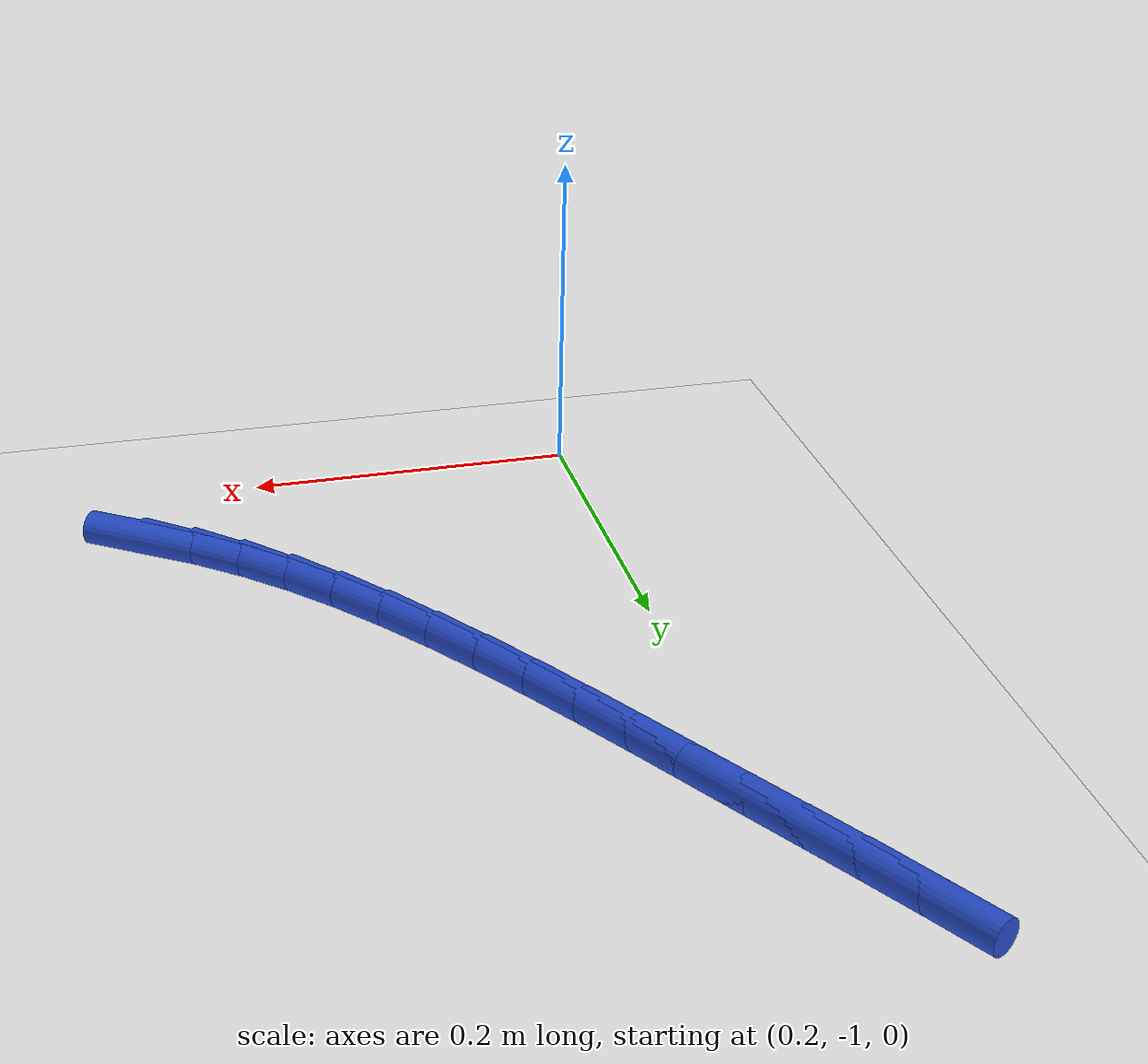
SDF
<sdf version="1.6">
 <world name="default">
  <model name="ground_plane">
   <static>1</static>
   <link name="link">
    <collision name="collision">
     <geometry><plane><normal>0 0 1</normal><size>100 100</size></plane></geometry>
     <surface><friction><ode><mu>100</mu><mu2>50</mu2></ode></friction></surface>
    </collision>
    <visual name="visual">
     <cast_shadows>0</cast_shadows>
     <geometry><plane><normal>0 0 1</normal><size>100 100</size></plane></geometry>
     <material>
      <script><uri>file://media/materials/scripts/gazebo.material</uri><name>Gazebo/WhiteGlow</name></script>
     </material>
    </visual>
   </link>
  </model>
  <model name="line">
   <link name="link_159">
    <pose>0.4726788309453588 -0.9310086370220814 0.01 0 1.57 -0.5890532412970005</pose>
    <collision name="collision">
     <geometry><cylinder><radius>0.01</radius><length>0.08</length></cylinder></geometry>
    </collision>
    <visual name="visual">
     <material>
      <script><name>Gazebo/Blue</name><uri>file://media/materials/scripts/gazebo.material</uri></script>
     </material>
     <geometry><cylinder><radius>0.01</radius><length>0.08</length></cylinder></geometry>
    </visual>
   </link>
   <link name="link_160">
    <pose>0.44523773166597164 -0.9126728973521935 0.01 0 1.57 -0.6717771150096773</pose>
    <collision name="collision">
     <geometry><cylinder><radius>0.01</radius><length>0.08</length></cylinder></geometry>
    </collision>
    <visual name="visual">
     <material>
      <script><name>Gazebo/Blue</name><uri>file://media/materials/scripts/gazebo.material</uri></script>
     </material>
     <geometry><cylinder><radius>0.01</radius><length>0.08</length></cylinder></geometry>
    </visual>
   </link>
   <link name="link_161">
    <pose>0.4191711997258245 -0.8919460734467256 0.01 0 1.57 -0.7445251690086511</pose>
    <collision name="collision">
     <geometry><cylinder><radius>0.01</radius><length>0.08</length></cylinder></geometry>
    </collision>
    <visual name="visual">
     <material>
      <script><name>Gazebo/Blue</name><uri>file://media/materials/scripts/gazebo.material</uri></script>
     </material>
     <geometry><cylinder><radius>0.01</radius><length>0.08</length></cylinder></geometry>
    </visual>
   </link>
   <link name="link_162">
    <pose>0.39436111746874386 -0.8690855186205174 0.01 0 1.57 -0.8073985625443121</pose>
    <collision name="collision">
     <geometry><cylinder><radius>0.01</radius><length>0.08</length></cylinder></geometry>
    </collision>
    <visual name="visual">
     <material>
      <script><name>Gazebo/Blue</name><uri>file://media/materials/scripts/gazebo.material</uri></script>
     </material>
     <geometry><cylinder><radius>0.01</radius><length>0.08</length></cylinder></geometry>
    </visual>
   </link>
   <link name="link_163">
    <pose>0.37068936723855633 -0.8443485861884088 0.01 0 1.57 -0.8608435589808247</pose>
    <collision name="collision">
     <geometry><cylinder><radius>0.01</radius><length>0.08</length></cylinder></geometry>
    </collision>
    <visual name="visual">
     <material>
      <script><name>Gazebo/Blue</name><uri>file://media/materials/scripts/gazebo.material</uri></script>
     </material>
     <geometry><cylinder><radius>0.01</radius><length>0.08</length></cylinder></geometry>
    </visual>
   </link>
   <link name="link_164">
    <pose>0.3480378313790888 -0.8179926294652399 0.01 0 1.57 -0.9054675526997554</pose>
    <collision name="collision">
     <geometry><cylinder><radius>0.01</radius><length>0.08</length></cylinder></geometry>
    </collision>
    <visual name="visual">
     <material>
      <script><name>Gazebo/Blue</name><uri>file://media/materials/scripts/gazebo.material</uri></script>
     </material>
     <geometry><cylinder><radius>0.01</radius><length>0.08</length></cylinder></geometry>
    </visual>
   </link>
   <link name="link_165">
    <pose>0.32628839223416745 -0.7902750017658503 0.01 0 1.57 -0.9419082473283327</pose>
    <collision name="collision">
     <geometry><cylinder><radius>0.01</radius><length>0.08</length></cylinder></geometry>
    </collision>
    <visual name="visual">
     <material>
      <script><name>Gazebo/Blue</name><uri>file://media/materials/scripts/gazebo.material</uri></script>
     </material>
     <geometry><cylinder><radius>0.01</radius><length>0.08</length></cylinder></geometry>
    </visual>
   </link>
   <link name="link_166">
    <pose>0.30532293214761946 -0.7614530564050804 0.01 0 1.57 -0.9707502834939887</pose>
    <collision name="collision">
     <geometry><cylinder><radius>0.01</radius><length>0.08</length></cylinder></geometry>
    </collision>
    <visual name="visual">
     <material>
      <script><name>Gazebo/Blue</name><uri>file://media/materials/scripts/gazebo.material</uri></script>
     </material>
     <geometry><cylinder><radius>0.01</radius><length>0.08</length></cylinder></geometry>
    </visual>
   </link>
   <link name="link_167">
    <pose>0.28502333346327074 -0.7317841466977691 0.01 0 1.57 -0.9924762861028162</pose>
    <collision name="collision">
     <geometry><cylinder><radius>0.01</radius><length>0.08</length></cylinder></geometry>
    </collision>
    <visual name="visual">
     <material>
      <script><name>Gazebo/Blue</name><uri>file://media/materials/scripts/gazebo.material</uri></script>
     </material>
     <geometry><cylinder><radius>0.01</radius><length>0.08</length></cylinder></geometry>
    </visual>
   </link>
   <link name="link_168">
    <pose>0.26527147852494815 -0.7015256259587567 0.01 0 1.57 -1.0074394712874608</pose>
    <collision name="collision">
     <geometry><cylinder><radius>0.01</radius><length>0.08</length></cylinder></geometry>
    </collision>
    <visual name="visual">
     <material>
      <script><name>Gazebo/Blue</name><uri>file://media/materials/scripts/gazebo.material</uri></script>
     </material>
     <geometry><cylinder><radius>0.01</radius><length>0.08</length></cylinder></geometry>
    </visual>
   </link>
   <link name="link_169">
    <pose>0.24594924967647847 -0.6709348475028831 0.01 0 1.57 -1.0158477807800665</pose>
    <collision name="collision">
     <geometry><cylinder><radius>0.01</radius><length>0.08</length></cylinder></geometry>
    </collision>
    <visual name="visual">
     <material>
      <script><name>Gazebo/Blue</name><uri>file://media/materials/scripts/gazebo.material</uri></script>
     </material>
     <geometry><cylinder><radius>0.01</radius><length>0.08</length></cylinder></geometry>
    </visual>
   </link>
   <link name="link_170">
    <pose>0.2269385292616881 -0.6402691646449881 0.01 0 1.57 -1.017758447614133</pose>
    <collision name="collision">
     <geometry><cylinder><radius>0.01</radius><length>0.08</length></cylinder></geometry>
    </collision>
    <visual name="visual">
     <material>
      <script><name>Gazebo/Blue</name><uri>file://media/materials/scripts/gazebo.material</uri></script>
     </material>
     <geometry><cylinder><radius>0.01</radius><length>0.08</length></cylinder></geometry>
    </visual>
   </link>
   <link name="link_171">
    <pose>0.20812132733477168 -0.6097857363947268 0.01 0 1.57 -1.0159161599925828</pose>
    <collision name="collision">
     <geometry><cylinder><radius>0.01</radius><length>0.08</length></cylinder></geometry>
    </collision>
    <visual name="visual">
     <material>
      <script><name>Gazebo/Blue</name><uri>file://media/materials/scripts/gazebo.material</uri></script>
     </material>
     <geometry><cylinder><radius>0.01</radius><length>0.08</length></cylinder></geometry>
    </visual>
   </link>
   <link name="link_172">
    <pose>0.1894409956819787 -0.5796483932656666 0.01 0 1.57 -1.017712165268726</pose>
    <collision name="collision">
     <geometry><cylinder><radius>0.01</radius><length>0.08</length></cylinder></geometry>
    </collision>
    <visual name="visual">
     <material>
      <script><name>Gazebo/Blue</name><uri>file://media/materials/scripts/gazebo.material</uri></script>
     </material>
     <geometry><cylinder><radius>0.01</radius><length>0.08</length></cylinder></geometry>
    </visual>
   </link>
   <link name="link_173">
    <pose>0.17100043872405513 -0.5497782141090717 0.01 0 1.57 -1.0244670365276454</pose>
    <collision name="collision">
     <geometry><cylinder><radius>0.01</radius><length>0.08</length></cylinder></geometry>
    </collision>
    <visual name="visual">
     <material>
      <script><name>Gazebo/Blue</name><uri>file://media/materials/scripts/gazebo.material</uri></script>
     </material>
     <geometry><cylinder><radius>0.01</radius><length>0.08</length></cylinder></geometry>
    </visual>
   </link>
   <link name="link_174">
    <pose>0.15292817002427336 -0.5200573146971117 0.01 0 1.57 -1.036297889117577</pose>
    <collision name="collision">
     <geometry><cylinder><radius>0.01</radius><length>0.08</length></cylinder></geometry>
    </collision>
    <visual name="visual">
     <material>
      <script><name>Gazebo/Blue</name><uri>file://media/materials/scripts/gazebo.material</uri></script>
     </material>
     <geometry><cylinder><radius>0.01</radius><length>0.08</length></cylinder></geometry>
    </visual>
   </link>
  </model>
 </world>
</sdf>
